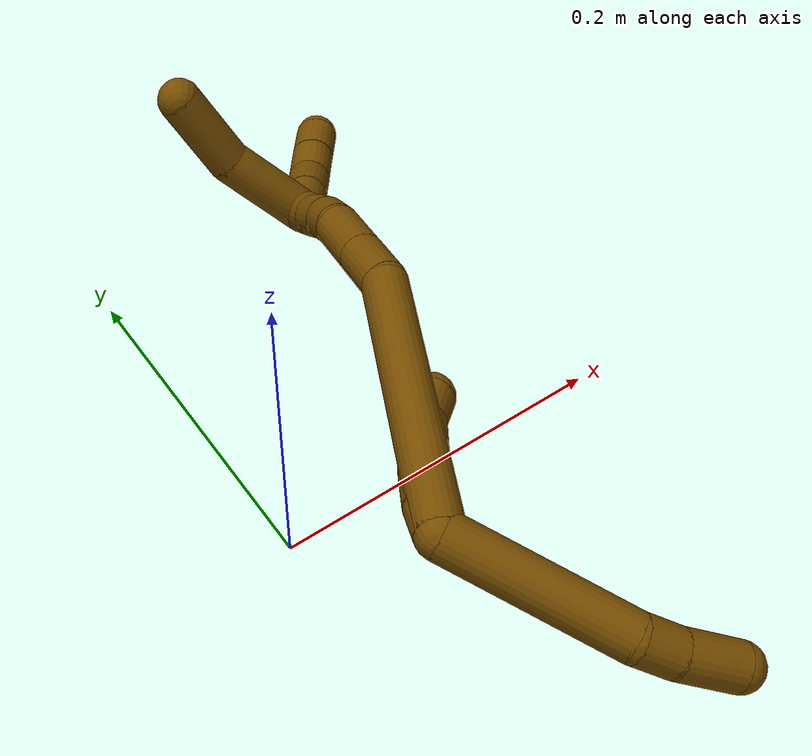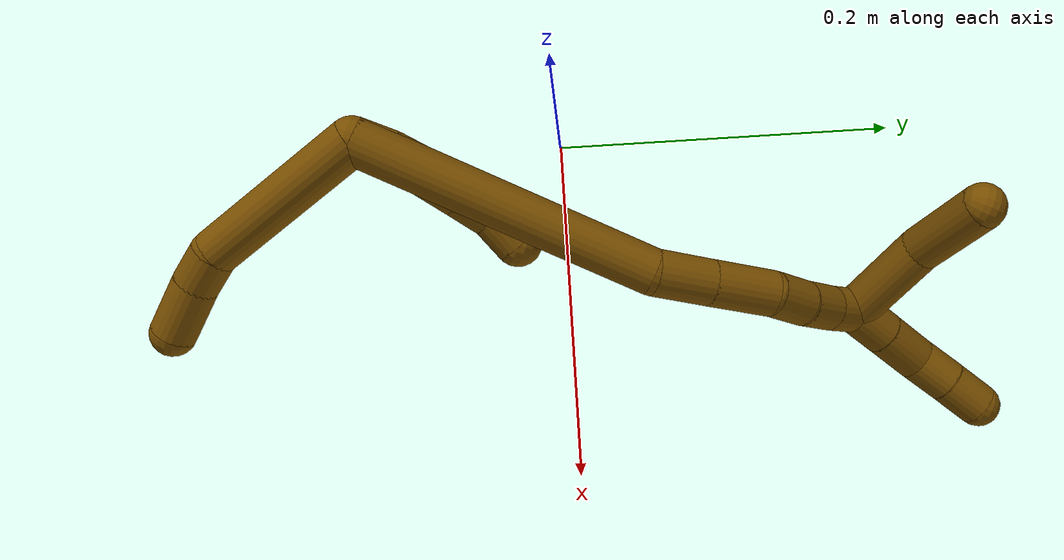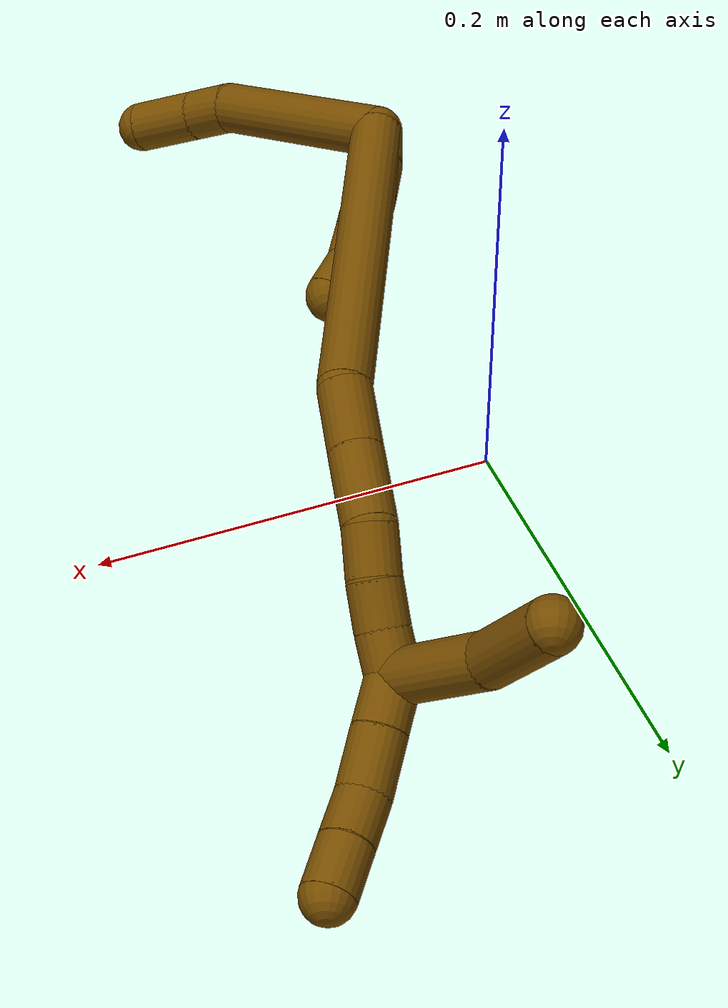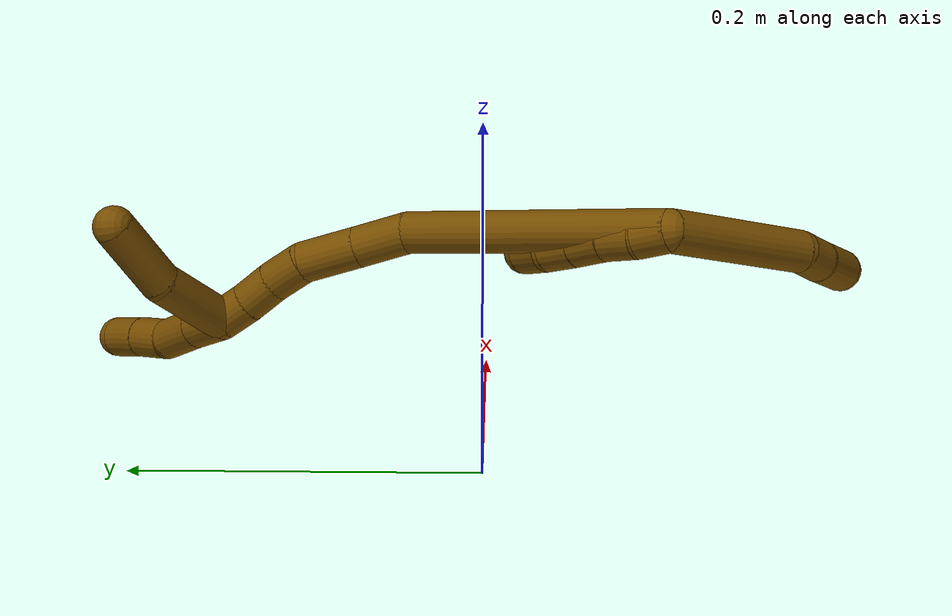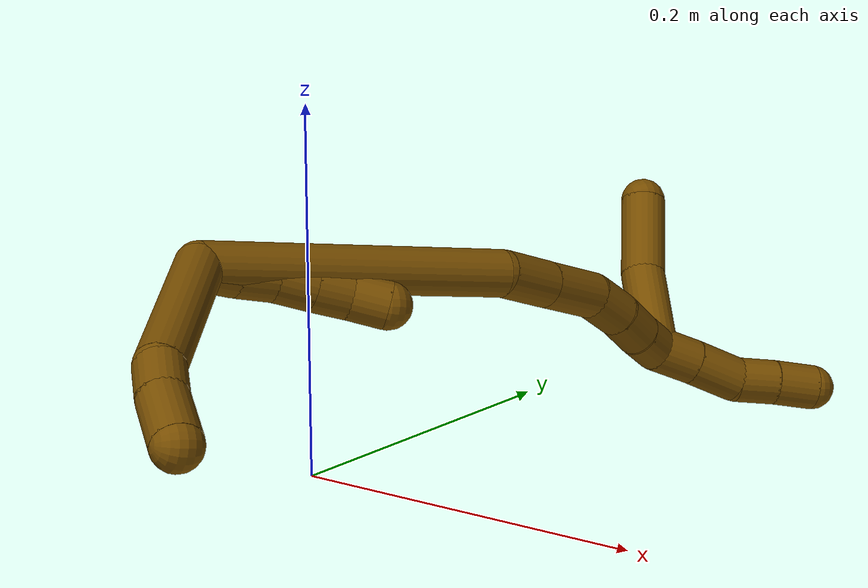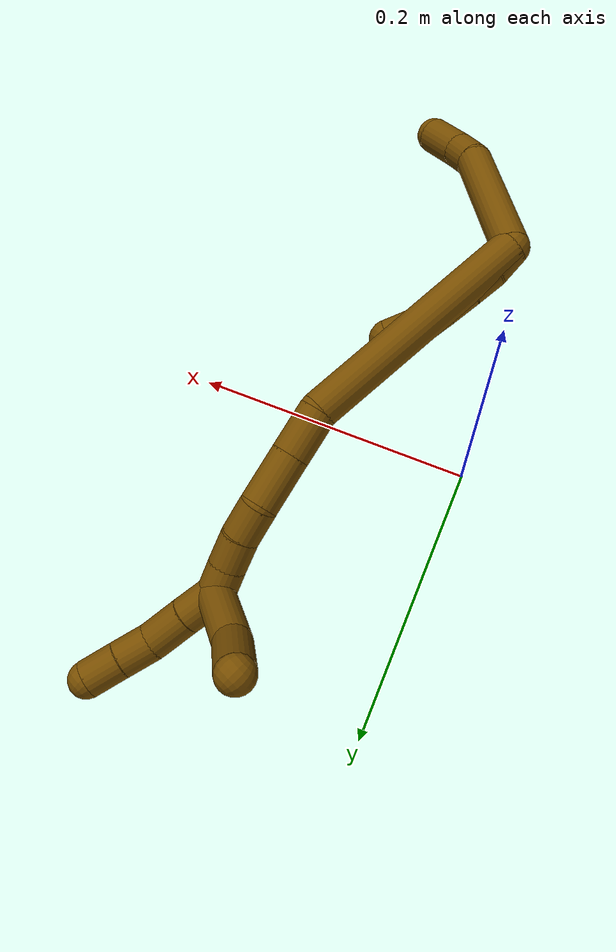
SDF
<sdf version="1.7">
 <world name="default">
  <model name="photoneo_s_sensor">
   <static>1</static>
   <pose>0 0 2 1.57079 1.57079 3.14159</pose>
   <link name="link">
    <inertial><mass>0.1</mass></inertial>
    <sensor name="sensor" type="depth">
     <update_rate>30</update_rate>
     <camera>
      <horizontal_fov>1.22</horizontal_fov>
      <image><width>1920</width><height>1200</height><format>B8G8R8</format></image>
      <clip><near>0.1</near><far>4</far></clip>
      <depth_camera><output>points</output></depth_camera>
     </camera>
     <plugin name="camera_plugin" filename="libgazebo_ros_depth_camera.so">
      <baseline>0.2</baseline>
      <alwaysOn>1</alwaysOn>
      <updateRate>0.0</updateRate>
      <cameraName>camera_ir</cameraName>
      <imageTopicName>/camera/color/image_raw</imageTopicName>
      <cameraInfoTopicName>/camera/color/camera_info</cameraInfoTopicName>
      <depthImageTopicName>/camera/depth/image_raw</depthImageTopicName>
      <depthImageCameraInfoTopicName>/camera/depth/camera_info</depthImageCameraInfoTopicName>
      <pointCloudTopicName>/camera/depth/points</pointCloudTopicName>
      <frameName>fr_optical</frameName>
      <pointCloudCutoff>0.1</pointCloudCutoff>
      <pointCloudCutoffMax>2.0</pointCloudCutoffMax>
      <distortionK1>0</distortionK1>
      <distortionK2>0</distortionK2>
      <distortionK3>0</distortionK3>
      <distortionT1>0</distortionT1>
      <distortionT2>0</distortionT2>
      <CxPrime>0</CxPrime>
      <Cx>0</Cx>
      <Cy>0</Cy>
      <focalLength>0</focalLength>
      <hackBaseline>0</hackBaseline>
     </plugin>
    </sensor>
   </link>
  </model>
  <model name="bin">
   <static>1</static>
   <link name="bottom">
    <collision name="collision-bottom">
     <pose>0 0 -0.01 0 -0 0</pose>
     <geometry><box><size>0.8 0.6 0.02</size></box></geometry>
     <surface>
      <friction><ode><mu>100</mu><mu2>100</mu2></ode></friction>
      <contact><collide_bitmask>65535</collide_bitmask></contact>
     </surface>
    </collision>
   </link>
   <link name="west_wall">
    <collision name="collision-west_wall">
     <pose>-0.41 0 0.1 0 -0 0</pose>
     <geometry><box><size>0.02 0.6 0.2</size></box></geometry>
     <surface>
      <friction><ode><mu>100</mu><mu2>100</mu2></ode></friction>
      <contact><collide_bitmask>65535</collide_bitmask></contact>
     </surface>
    </collision>
   </link>
   <link name="east_wall">
    <collision name="collision-east_wall">
     <pose>0.41 0 0.1 0 -0 0</pose>
     <geometry><box><size>0.02 0.6 0.2</size></box></geometry>
     <surface>
      <friction><ode><mu>100</mu><mu2>100</mu2></ode></friction>
      <contact><collide_bitmask>65535</collide_bitmask></contact>
     </surface>
    </collision>
   </link>
   <link name="south_wall">
    <collision name="collision-south_wall">
     <pose>0 -0.31 0.1 0 -0 0</pose>
     <geometry><box><size>0.8 0.02 0.2</size></box></geometry>
     <surface>
      <friction><ode><mu>100</mu><mu2>100</mu2></ode></friction>
      <contact><collide_bitmask>65535</collide_bitmask></contact>
     </surface>
    </collision>
   </link>
   <link name="north_wall">
    <collision name="collision-north_wall">
     <pose>0 0.31 0.1 0 -0 0</pose>
     <geometry><box><size>0.8 0.02 0.2</size></box></geometry>
     <surface>
      <friction><ode><mu>100</mu><mu2>100</mu2></ode></friction>
      <contact><collide_bitmask>65535</collide_bitmask></contact>
     </surface>
    </collision>
   </link>
  </model>
  <model name="12">
   <static>0</static>
   <link name="12">
    <collision name="collision-cylinder-e_1_2_8">
     <pose>-0.021958 -0.035435 0.02406 0.974311 -0.47373 -0.254374</pose>
     <geometry><cylinder><radius>0.0125</radius><length>0.096265</length></cylinder></geometry>
     <surface>
      <friction><ode><mu>1.16</mu><mu2>1.16</mu2><slip1>0</slip1><slip2>0</slip2></ode></friction>
      <contact><ode><kp>1e+06</kp><kd>1</kd><max_vel>0</max_vel><min_depth>0.001</min_depth></ode></contact>
     </surface>
    </collision>
    <visual name="visual-cylinder-e_1_2_8">
     <pose>-0.021958 -0.035435 0.02406 0.974311 -0.47373 -0.254374</pose>
     <geometry><cylinder><radius>0.0125</radius><length>0.096265</length></cylinder></geometry>
     <material><ambient>0.466667 0.301961 0 1</ambient></material>
    </visual>
    <collision name="collision-cylinder-e_2_8_9">
     <pose>-0.050367 -0.079162 0.050416 1.30067 -0.643312 -0.496536</pose>
     <geometry><cylinder><radius>0.0125</radius><length>0.021505</length></cylinder></geometry>
     <surface>
      <friction><ode><mu>1.16</mu><mu2>1.16</mu2><slip1>0</slip1><slip2>0</slip2></ode></friction>
      <contact><ode><kp>1e+06</kp><kd>1</kd><max_vel>0</max_vel><min_depth>0.001</min_depth></ode></contact>
     </surface>
    </collision>
    <visual name="visual-cylinder-e_2_8_9">
     <pose>-0.050367 -0.079162 0.050416 1.30067 -0.643312 -0.496536</pose>
     <geometry><cylinder><radius>0.0125</radius><length>0.021505</length></cylinder></geometry>
     <material><ambient>0.466667 0.301961 0 1</ambient></material>
    </visual>
    <collision name="collision-cylinder-e_3_9_6">
     <pose>-0.065525 -0.100873 0.054653 1.42718 -0.570932 -0.497656</pose>
     <geometry><cylinder><radius>0.0125</radius><length>0.03223</length></cylinder></geometry>
     <surface>
      <friction><ode><mu>1.16</mu><mu2>1.16</mu2><slip1>0</slip1><slip2>0</slip2></ode></friction>
      <contact><ode><kp>1e+06</kp><kd>1</kd><max_vel>0</max_vel><min_depth>0.001</min_depth></ode></contact>
     </surface>
    </collision>
    <visual name="visual-cylinder-e_3_9_6">
     <pose>-0.065525 -0.100873 0.054653 1.42718 -0.570932 -0.497656</pose>
     <geometry><cylinder><radius>0.0125</radius><length>0.03223</length></cylinder></geometry>
     <material><ambient>0.466667 0.301961 0 1</ambient></material>
    </visual>
    <collision name="collision-cylinder-e_1_2_10">
     <pose>-0.001264 0.000537 -0.009905 -3.08741 -0.126732 2.33431</pose>
     <geometry><cylinder><radius>0.0125</radius><length>0.02</length></cylinder></geometry>
     <surface>
      <friction><ode><mu>1.16</mu><mu2>1.16</mu2><slip1>0</slip1><slip2>0</slip2></ode></friction>
      <contact><ode><kp>1e+06</kp><kd>1</kd><max_vel>0</max_vel><min_depth>0.001</min_depth></ode></contact>
     </surface>
    </collision>
    <visual name="visual-cylinder-e_1_2_10">
     <pose>-0.001264 0.000537 -0.009905 -3.08741 -0.126732 2.33431</pose>
     <geometry><cylinder><radius>0.0125</radius><length>0.02</length></cylinder></geometry>
     <material><ambient>0.466667 0.301961 0 1</ambient></material>
    </visual>
    <collision name="collision-cylinder-e_2_10_11">
     <pose>-0.003097 5.8e-05 -0.029742 3.03959 -0.056926 -1.01753</pose>
     <geometry><cylinder><radius>0.0125</radius><length>0.02</length></cylinder></geometry>
     <surface>
      <friction><ode><mu>1.16</mu><mu2>1.16</mu2><slip1>0</slip1><slip2>0</slip2></ode></friction>
      <contact><ode><kp>1e+06</kp><kd>1</kd><max_vel>0</max_vel><min_depth>0.001</min_depth></ode></contact>
     </surface>
    </collision>
    <visual name="visual-cylinder-e_2_10_11">
     <pose>-0.003097 5.8e-05 -0.029742 3.03959 -0.056926 -1.01753</pose>
     <geometry><cylinder><radius>0.0125</radius><length>0.02</length></cylinder></geometry>
     <material><ambient>0.466667 0.301961 0 1</ambient></material>
    </visual>
    <collision name="collision-cylinder-e_3_11_12">
     <pose>-0.005506 -0.002355 -0.049404 2.99906 -0.185064 -1.83014</pose>
     <geometry><cylinder><radius>0.0125</radius><length>0.02</length></cylinder></geometry>
     <surface>
      <friction><ode><mu>1.16</mu><mu2>1.16</mu2><slip1>0</slip1><slip2>0</slip2></ode></friction>
      <contact><ode><kp>1e+06</kp><kd>1</kd><max_vel>0</max_vel><min_depth>0.001</min_depth></ode></contact>
     </surface>
    </collision>
    <visual name="visual-cylinder-e_3_11_12">
     <pose>-0.005506 -0.002355 -0.049404 2.99906 -0.185064 -1.83014</pose>
     <geometry><cylinder><radius>0.0125</radius><length>0.02</length></cylinder></geometry>
     <material><ambient>0.466667 0.301961 0 1</ambient></material>
    </visual>
    <collision name="collision-cylinder-e_4_12_13">
     <pose>-0.008951 -0.005298 -0.068882 2.98424 -0.161191 -1.59498</pose>
     <geometry><cylinder><radius>0.0125</radius><length>0.02</length></cylinder></geometry>
     <surface>
      <friction><ode><mu>1.16</mu><mu2>1.16</mu2><slip1>0</slip1><slip2>0</slip2></ode></friction>
      <contact><ode><kp>1e+06</kp><kd>1</kd><max_vel>0</max_vel><min_depth>0.001</min_depth></ode></contact>
     </surface>
    </collision>
    <visual name="visual-cylinder-e_4_12_13">
     <pose>-0.008951 -0.005298 -0.068882 2.98424 -0.161191 -1.59498</pose>
     <geometry><cylinder><radius>0.0125</radius><length>0.02</length></cylinder></geometry>
     <material><ambient>0.466667 0.301961 0 1</ambient></material>
    </visual>
    <collision name="collision-cylinder-e_5_13_5">
     <pose>-0.012452 -0.010953 -0.087548 2.70988 -0.190808 -0.823</pose>
     <geometry><cylinder><radius>0.0125</radius><length>0.02</length></cylinder></geometry>
     <surface>
      <friction><ode><mu>1.16</mu><mu2>1.16</mu2><slip1>0</slip1><slip2>0</slip2></ode></friction>
      <contact><ode><kp>1e+06</kp><kd>1</kd><max_vel>0</max_vel><min_depth>0.001</min_depth></ode></contact>
     </surface>
    </collision>
    <visual name="visual-cylinder-e_5_13_5">
     <pose>-0.012452 -0.010953 -0.087548 2.70988 -0.190808 -0.823</pose>
     <geometry><cylinder><radius>0.0125</radius><length>0.02</length></cylinder></geometry>
     <material><ambient>0.466667 0.301961 0 1</ambient></material>
    </visual>
    <collision name="collision-cylinder-e_1_2_14">
     <pose>0.0023 -0.00434 -0.082827 3.08925 0.027729 0.974153</pose>
     <geometry><cylinder><radius>0.0125</radius><length>0.165945</length></cylinder></geometry>
     <surface>
      <friction><ode><mu>1.16</mu><mu2>1.16</mu2><slip1>0</slip1><slip2>0</slip2></ode></friction>
      <contact><ode><kp>1e+06</kp><kd>1</kd><max_vel>0</max_vel><min_depth>0.001</min_depth></ode></contact>
     </surface>
    </collision>
    <visual name="visual-cylinder-e_1_2_14">
     <pose>0.0023 -0.00434 -0.082827 3.08925 0.027729 0.974153</pose>
     <geometry><cylinder><radius>0.0125</radius><length>0.165945</length></cylinder></geometry>
     <material><ambient>0.466667 0.301961 0 1</ambient></material>
    </visual>
    <collision name="collision-cylinder-e_2_14_15">
     <pose>0.002315 -0.005139 -0.181265 -2.91859 -0.141824 1.13065</pose>
     <geometry><cylinder><radius>0.0125</radius><length>0.032341</length></cylinder></geometry>
     <surface>
      <friction><ode><mu>1.16</mu><mu2>1.16</mu2><slip1>0</slip1><slip2>0</slip2></ode></friction>
      <contact><ode><kp>1e+06</kp><kd>1</kd><max_vel>0</max_vel><min_depth>0.001</min_depth></ode></contact>
     </surface>
    </collision>
    <visual name="visual-cylinder-e_2_14_15">
     <pose>0.002315 -0.005139 -0.181265 -2.91859 -0.141824 1.13065</pose>
     <geometry><cylinder><radius>0.0125</radius><length>0.032341</length></cylinder></geometry>
     <material><ambient>0.466667 0.301961 0 1</ambient></material>
    </visual>
    <collision name="collision-cylinder-e_3_15_16">
     <pose>-0.002405 0.002477 -0.214419 -2.9133 -0.134388 1.06162</pose>
     <geometry><cylinder><radius>0.0125</radius><length>0.036346</length></cylinder></geometry>
     <surface>
      <friction><ode><mu>1.16</mu><mu2>1.16</mu2><slip1>0</slip1><slip2>0</slip2></ode></friction>
      <contact><ode><kp>1e+06</kp><kd>1</kd><max_vel>0</max_vel><min_depth>0.001</min_depth></ode></contact>
     </surface>
    </collision>
    <visual name="visual-cylinder-e_3_15_16">
     <pose>-0.002405 0.002477 -0.214419 -2.9133 -0.134388 1.06162</pose>
     <geometry><cylinder><radius>0.0125</radius><length>0.036346</length></cylinder></geometry>
     <material><ambient>0.466667 0.301961 0 1</ambient></material>
    </visual>
    <collision name="collision-cylinder-e_4_16_17">
     <pose>-0.009695 0.008706 -0.242522 -2.94044 -0.423207 2.26323</pose>
     <geometry><cylinder><radius>0.0125</radius><length>0.023644</length></cylinder></geometry>
     <surface>
      <friction><ode><mu>1.16</mu><mu2>1.16</mu2><slip1>0</slip1><slip2>0</slip2></ode></friction>
      <contact><ode><kp>1e+06</kp><kd>1</kd><max_vel>0</max_vel><min_depth>0.001</min_depth></ode></contact>
     </surface>
    </collision>
    <visual name="visual-cylinder-e_4_16_17">
     <pose>-0.009695 0.008706 -0.242522 -2.94044 -0.423207 2.26323</pose>
     <geometry><cylinder><radius>0.0125</radius><length>0.023644</length></cylinder></geometry>
     <material><ambient>0.466667 0.301961 0 1</ambient></material>
    </visual>
    <collision name="collision-cylinder-e_5_17_18">
     <pose>-0.019736 0.013816 -0.262136 -2.82594 -0.49867 2.02438</pose>
     <geometry><cylinder><radius>0.0125</radius><length>0.021687</length></cylinder></geometry>
     <surface>
      <friction><ode><mu>1.16</mu><mu2>1.16</mu2><slip1>0</slip1><slip2>0</slip2></ode></friction>
      <contact><ode><kp>1e+06</kp><kd>1</kd><max_vel>0</max_vel><min_depth>0.001</min_depth></ode></contact>
     </surface>
    </collision>
    <visual name="visual-cylinder-e_5_17_18">
     <pose>-0.019736 0.013816 -0.262136 -2.82594 -0.49867 2.02438</pose>
     <geometry><cylinder><radius>0.0125</radius><length>0.021687</length></cylinder></geometry>
     <material><ambient>0.466667 0.301961 0 1</ambient></material>
    </visual>
    <collision name="collision-cylinder-e_6_18_1">
     <pose>-0.028952 0.020005 -0.279773 -2.78144 -0.413919 1.71299</pose>
     <geometry><cylinder><radius>0.0125</radius><length>0.020038</length></cylinder></geometry>
     <surface>
      <friction><ode><mu>1.16</mu><mu2>1.16</mu2><slip1>0</slip1><slip2>0</slip2></ode></friction>
      <contact><ode><kp>1e+06</kp><kd>1</kd><max_vel>0</max_vel><min_depth>0.001</min_depth></ode></contact>
     </surface>
    </collision>
    <visual name="visual-cylinder-e_6_18_1">
     <pose>-0.028952 0.020005 -0.279773 -2.78144 -0.413919 1.71299</pose>
     <geometry><cylinder><radius>0.0125</radius><length>0.020038</length></cylinder></geometry>
     <material><ambient>0.466667 0.301961 0 1</ambient></material>
    </visual>
    <collision name="collision-cylinder-e_1_1_19">
     <pose>-0.013239 0.039969 -0.29421 -1.90731 0.839199 -1.12244</pose>
     <geometry><cylinder><radius>0.0125</radius><length>0.053064</length></cylinder></geometry>
     <surface>
      <friction><ode><mu>1.16</mu><mu2>1.16</mu2><slip1>0</slip1><slip2>0</slip2></ode></friction>
      <contact><ode><kp>1e+06</kp><kd>1</kd><max_vel>0</max_vel><min_depth>0.001</min_depth></ode></contact>
     </surface>
    </collision>
    <visual name="visual-cylinder-e_1_1_19">
     <pose>-0.013239 0.039969 -0.29421 -1.90731 0.839199 -1.12244</pose>
     <geometry><cylinder><radius>0.0125</radius><length>0.053064</length></cylinder></geometry>
     <material><ambient>0.466667 0.301961 0 1</ambient></material>
    </visual>
    <collision name="collision-cylinder-e_2_19_4">
     <pose>0.027892 0.065352 -0.304352 -2.03096 1.14667 -1.61065</pose>
     <geometry><cylinder><radius>0.0125</radius><length>0.046936</length></cylinder></geometry>
     <surface>
      <friction><ode><mu>1.16</mu><mu2>1.16</mu2><slip1>0</slip1><slip2>0</slip2></ode></friction>
      <contact><ode><kp>1e+06</kp><kd>1</kd><max_vel>0</max_vel><min_depth>0.001</min_depth></ode></contact>
     </surface>
    </collision>
    <visual name="visual-cylinder-e_2_19_4">
     <pose>0.027892 0.065352 -0.304352 -2.03096 1.14667 -1.61065</pose>
     <geometry><cylinder><radius>0.0125</radius><length>0.046936</length></cylinder></geometry>
     <material><ambient>0.466667 0.301961 0 1</ambient></material>
    </visual>
    <collision name="collision-cylinder-e_1_1_20">
     <pose>-0.036222 0.02116 -0.299756 2.96129 -0.272715 -1.9765</pose>
     <geometry><cylinder><radius>0.0125</radius><length>0.024063</length></cylinder></geometry>
     <surface>
      <friction><ode><mu>1.16</mu><mu2>1.16</mu2><slip1>0</slip1><slip2>0</slip2></ode></friction>
      <contact><ode><kp>1e+06</kp><kd>1</kd><max_vel>0</max_vel><min_depth>0.001</min_depth></ode></contact>
     </surface>
    </collision>
    <visual name="visual-cylinder-e_1_1_20">
     <pose>-0.036222 0.02116 -0.299756 2.96129 -0.272715 -1.9765</pose>
     <geometry><cylinder><radius>0.0125</radius><length>0.024063</length></cylinder></geometry>
     <material><ambient>0.466667 0.301961 0 1</ambient></material>
    </visual>
    <collision name="collision-cylinder-e_2_20_21">
     <pose>-0.043902 0.016791 -0.324664 2.97354 -0.31333 -2.16186</pose>
     <geometry><cylinder><radius>0.0125</radius><length>0.028805</length></cylinder></geometry>
     <surface>
      <friction><ode><mu>1.16</mu><mu2>1.16</mu2><slip1>0</slip1><slip2>0</slip2></ode></friction>
      <contact><ode><kp>1e+06</kp><kd>1</kd><max_vel>0</max_vel><min_depth>0.001</min_depth></ode></contact>
     </surface>
    </collision>
    <visual name="visual-cylinder-e_2_20_21">
     <pose>-0.043902 0.016791 -0.324664 2.97354 -0.31333 -2.16186</pose>
     <geometry><cylinder><radius>0.0125</radius><length>0.028805</length></cylinder></geometry>
     <material><ambient>0.466667 0.301961 0 1</ambient></material>
    </visual>
    <collision name="collision-cylinder-e_3_21_22">
     <pose>-0.048577 0.011559 -0.34937 2.88487 -0.020371 -0.157505</pose>
     <geometry><cylinder><radius>0.0125</radius><length>0.02316</length></cylinder></geometry>
     <surface>
      <friction><ode><mu>1.16</mu><mu2>1.16</mu2><slip1>0</slip1><slip2>0</slip2></ode></friction>
      <contact><ode><kp>1e+06</kp><kd>1</kd><max_vel>0</max_vel><min_depth>0.001</min_depth></ode></contact>
     </surface>
    </collision>
    <visual name="visual-cylinder-e_3_21_22">
     <pose>-0.048577 0.011559 -0.34937 2.88487 -0.020371 -0.157505</pose>
     <geometry><cylinder><radius>0.0125</radius><length>0.02316</length></cylinder></geometry>
     <material><ambient>0.466667 0.301961 0 1</ambient></material>
    </visual>
    <collision name="collision-cylinder-e_4_22_3">
     <pose>-0.049723 0.005633 -0.372141 2.88904 -0.076016 -0.582054</pose>
     <geometry><cylinder><radius>0.0125</radius><length>0.023972</length></cylinder></geometry>
     <surface>
      <friction><ode><mu>1.16</mu><mu2>1.16</mu2><slip1>0</slip1><slip2>0</slip2></ode></friction>
      <contact><ode><kp>1e+06</kp><kd>1</kd><max_vel>0</max_vel><min_depth>0.001</min_depth></ode></contact>
     </surface>
    </collision>
    <visual name="visual-cylinder-e_4_22_3">
     <pose>-0.049723 0.005633 -0.372141 2.88904 -0.076016 -0.582054</pose>
     <geometry><cylinder><radius>0.0125</radius><length>0.023972</length></cylinder></geometry>
     <material><ambient>0.466667 0.301961 0 1</ambient></material>
    </visual>
    <collision name="collision-sphere-3">
     <pose>-0.050634 0.002647 -0.383713 0 -0 0</pose>
     <geometry><sphere><radius>0.0125</radius></sphere></geometry>
     <surface>
      <friction><ode><mu>1.16</mu><mu2>1.16</mu2><slip1>0</slip1><slip2>0</slip2></ode></friction>
      <contact><ode><kp>1e+06</kp><kd>1</kd><max_vel>0</max_vel><min_depth>0.001</min_depth></ode></contact>
     </surface>
    </collision>
    <visual name="visual-sphere-3">
     <pose>-0.050634 0.002647 -0.383713 0 -0 0</pose>
     <geometry><sphere><radius>0.0125</radius></sphere></geometry>
     <material><ambient>0.466667 0.301961 0 1</ambient></material>
    </visual>
    <collision name="collision-sphere-22">
     <pose>-0.048813 0.008619 -0.360568 0 -0 0</pose>
     <geometry><sphere><radius>0.0125</radius></sphere></geometry>
     <surface>
      <friction><ode><mu>1.16</mu><mu2>1.16</mu2><slip1>0</slip1><slip2>0</slip2></ode></friction>
      <contact><ode><kp>1e+06</kp><kd>1</kd><max_vel>0</max_vel><min_depth>0.001</min_depth></ode></contact>
     </surface>
    </collision>
    <visual name="visual-sphere-22">
     <pose>-0.048813 0.008619 -0.360568 0 -0 0</pose>
     <geometry><sphere><radius>0.0125</radius></sphere></geometry>
     <material><ambient>0.466667 0.301961 0 1</ambient></material>
    </visual>
    <collision name="collision-sphere-21">
     <pose>-0.048341 0.014499 -0.338172 0 -0 0</pose>
     <geometry><sphere><radius>0.0125</radius></sphere></geometry>
     <surface>
      <friction><ode><mu>1.16</mu><mu2>1.16</mu2><slip1>0</slip1><slip2>0</slip2></ode></friction>
      <contact><ode><kp>1e+06</kp><kd>1</kd><max_vel>0</max_vel><min_depth>0.001</min_depth></ode></contact>
     </surface>
    </collision>
    <visual name="visual-sphere-21">
     <pose>-0.048341 0.014499 -0.338172 0 -0 0</pose>
     <geometry><sphere><radius>0.0125</radius></sphere></geometry>
     <material><ambient>0.466667 0.301961 0 1</ambient></material>
    </visual>
    <collision name="collision-sphere-20">
     <pose>-0.039463 0.019082 -0.311155 0 -0 0</pose>
     <geometry><sphere><radius>0.0125</radius></sphere></geometry>
     <surface>
      <friction><ode><mu>1.16</mu><mu2>1.16</mu2><slip1>0</slip1><slip2>0</slip2></ode></friction>
      <contact><ode><kp>1e+06</kp><kd>1</kd><max_vel>0</max_vel><min_depth>0.001</min_depth></ode></contact>
     </surface>
    </collision>
    <visual name="visual-sphere-20">
     <pose>-0.039463 0.019082 -0.311155 0 -0 0</pose>
     <geometry><sphere><radius>0.0125</radius></sphere></geometry>
     <material><ambient>0.466667 0.301961 0 1</ambient></material>
    </visual>
    <collision name="collision-sphere-4">
     <pose>0.049281 0.074006 -0.308641 0 -0 0</pose>
     <geometry><sphere><radius>0.0125</radius></sphere></geometry>
     <surface>
      <friction><ode><mu>1.16</mu><mu2>1.16</mu2><slip1>0</slip1><slip2>0</slip2></ode></friction>
      <contact><ode><kp>1e+06</kp><kd>1</kd><max_vel>0</max_vel><min_depth>0.001</min_depth></ode></contact>
     </surface>
    </collision>
    <visual name="visual-sphere-4">
     <pose>0.049281 0.074006 -0.308641 0 -0 0</pose>
     <geometry><sphere><radius>0.0125</radius></sphere></geometry>
     <material><ambient>0.466667 0.301961 0 1</ambient></material>
    </visual>
    <collision name="collision-sphere-11">
     <pose>-0.003666 -0.000959 -0.039674 0 -0 0</pose>
     <geometry><sphere><radius>0.0125</radius></sphere></geometry>
     <surface>
      <friction><ode><mu>1.16</mu><mu2>1.16</mu2><slip1>0</slip1><slip2>0</slip2></ode></friction>
      <contact><ode><kp>1e+06</kp><kd>1</kd><max_vel>0</max_vel><min_depth>0.001</min_depth></ode></contact>
     </surface>
    </collision>
    <visual name="visual-sphere-11">
     <pose>-0.003666 -0.000959 -0.039674 0 -0 0</pose>
     <geometry><sphere><radius>0.0125</radius></sphere></geometry>
     <material><ambient>0.466667 0.301961 0 1</ambient></material>
    </visual>
    <collision name="collision-sphere-10">
     <pose>-0.002528 0.001074 -0.01981 0 -0 0</pose>
     <geometry><sphere><radius>0.0125</radius></sphere></geometry>
     <surface>
      <friction><ode><mu>1.16</mu><mu2>1.16</mu2><slip1>0</slip1><slip2>0</slip2></ode></friction>
      <contact><ode><kp>1e+06</kp><kd>1</kd><max_vel>0</max_vel><min_depth>0.001</min_depth></ode></contact>
     </surface>
    </collision>
    <visual name="visual-sphere-10">
     <pose>-0.002528 0.001074 -0.01981 0 -0 0</pose>
     <geometry><sphere><radius>0.0125</radius></sphere></geometry>
     <material><ambient>0.466667 0.301961 0 1</ambient></material>
    </visual>
    <collision name="collision-sphere-6">
     <pose>-0.074234 -0.114292 0.056593 0 -0 0</pose>
     <geometry><sphere><radius>0.0125</radius></sphere></geometry>
     <surface>
      <friction><ode><mu>1.16</mu><mu2>1.16</mu2><slip1>0</slip1><slip2>0</slip2></ode></friction>
      <contact><ode><kp>1e+06</kp><kd>1</kd><max_vel>0</max_vel><min_depth>0.001</min_depth></ode></contact>
     </surface>
    </collision>
    <visual name="visual-sphere-6">
     <pose>-0.074234 -0.114292 0.056593 0 -0 0</pose>
     <geometry><sphere><radius>0.0125</radius></sphere></geometry>
     <material><ambient>0.466667 0.301961 0 1</ambient></material>
    </visual>
    <collision name="collision-sphere-9">
     <pose>-0.056816 -0.087453 0.052712 0 -0 0</pose>
     <geometry><sphere><radius>0.0125</radius></sphere></geometry>
     <surface>
      <friction><ode><mu>1.16</mu><mu2>1.16</mu2><slip1>0</slip1><slip2>0</slip2></ode></friction>
      <contact><ode><kp>1e+06</kp><kd>1</kd><max_vel>0</max_vel><min_depth>0.001</min_depth></ode></contact>
     </surface>
    </collision>
    <visual name="visual-sphere-9">
     <pose>-0.056816 -0.087453 0.052712 0 -0 0</pose>
     <geometry><sphere><radius>0.0125</radius></sphere></geometry>
     <material><ambient>0.466667 0.301961 0 1</ambient></material>
    </visual>
    <collision name="collision-sphere-2">
     <geometry><sphere><radius>0.0125</radius></sphere></geometry>
     <surface>
      <friction><ode><mu>1.16</mu><mu2>1.16</mu2><slip1>0</slip1><slip2>0</slip2></ode></friction>
      <contact><ode><kp>1e+06</kp><kd>1</kd><max_vel>0</max_vel><min_depth>0.001</min_depth></ode></contact>
     </surface>
    </collision>
    <visual name="visual-sphere-2">
     <geometry><sphere><radius>0.0125</radius></sphere></geometry>
     <material><ambient>0.466667 0.301961 0 1</ambient></material>
    </visual>
    <collision name="collision-sphere-19">
     <pose>0.006504 0.056699 -0.300063 0 -0 0</pose>
     <geometry><sphere><radius>0.0125</radius></sphere></geometry>
     <surface>
      <friction><ode><mu>1.16</mu><mu2>1.16</mu2><slip1>0</slip1><slip2>0</slip2></ode></friction>
      <contact><ode><kp>1e+06</kp><kd>1</kd><max_vel>0</max_vel><min_depth>0.001</min_depth></ode></contact>
     </surface>
    </collision>
    <visual name="visual-sphere-19">
     <pose>0.006504 0.056699 -0.300063 0 -0 0</pose>
     <geometry><sphere><radius>0.0125</radius></sphere></geometry>
     <material><ambient>0.466667 0.301961 0 1</ambient></material>
    </visual>
    <collision name="collision-sphere-8">
     <pose>-0.043917 -0.070871 0.048121 0 -0 0</pose>
     <geometry><sphere><radius>0.0125</radius></sphere></geometry>
     <surface>
      <friction><ode><mu>1.16</mu><mu2>1.16</mu2><slip1>0</slip1><slip2>0</slip2></ode></friction>
      <contact><ode><kp>1e+06</kp><kd>1</kd><max_vel>0</max_vel><min_depth>0.001</min_depth></ode></contact>
     </surface>
    </collision>
    <visual name="visual-sphere-8">
     <pose>-0.043917 -0.070871 0.048121 0 -0 0</pose>
     <geometry><sphere><radius>0.0125</radius></sphere></geometry>
     <material><ambient>0.466667 0.301961 0 1</ambient></material>
    </visual>
    <collision name="collision-sphere-12">
     <pose>-0.007346 -0.003751 -0.059133 0 -0 0</pose>
     <geometry><sphere><radius>0.0125</radius></sphere></geometry>
     <surface>
      <friction><ode><mu>1.16</mu><mu2>1.16</mu2><slip1>0</slip1><slip2>0</slip2></ode></friction>
      <contact><ode><kp>1e+06</kp><kd>1</kd><max_vel>0</max_vel><min_depth>0.001</min_depth></ode></contact>
     </surface>
    </collision>
    <visual name="visual-sphere-12">
     <pose>-0.007346 -0.003751 -0.059133 0 -0 0</pose>
     <geometry><sphere><radius>0.0125</radius></sphere></geometry>
     <material><ambient>0.466667 0.301961 0 1</ambient></material>
    </visual>
    <collision name="collision-sphere-13">
     <pose>-0.010556 -0.006845 -0.07863 0 -0 0</pose>
     <geometry><sphere><radius>0.0125</radius></sphere></geometry>
     <surface>
      <friction><ode><mu>1.16</mu><mu2>1.16</mu2><slip1>0</slip1><slip2>0</slip2></ode></friction>
      <contact><ode><kp>1e+06</kp><kd>1</kd><max_vel>0</max_vel><min_depth>0.001</min_depth></ode></contact>
     </surface>
    </collision>
    <visual name="visual-sphere-13">
     <pose>-0.010556 -0.006845 -0.07863 0 -0 0</pose>
     <geometry><sphere><radius>0.0125</radius></sphere></geometry>
     <material><ambient>0.466667 0.301961 0 1</ambient></material>
    </visual>
    <collision name="collision-sphere-5">
     <pose>-0.014349 -0.015061 -0.096466 0 -0 0</pose>
     <geometry><sphere><radius>0.0125</radius></sphere></geometry>
     <surface>
      <friction><ode><mu>1.16</mu><mu2>1.16</mu2><slip1>0</slip1><slip2>0</slip2></ode></friction>
      <contact><ode><kp>1e+06</kp><kd>1</kd><max_vel>0</max_vel><min_depth>0.001</min_depth></ode></contact>
     </surface>
    </collision>
    <visual name="visual-sphere-5">
     <pose>-0.014349 -0.015061 -0.096466 0 -0 0</pose>
     <geometry><sphere><radius>0.0125</radius></sphere></geometry>
     <material><ambient>0.466667 0.301961 0 1</ambient></material>
    </visual>
    <collision name="collision-sphere-14">
     <pose>0.004601 -0.008679 -0.165654 0 -0 0</pose>
     <geometry><sphere><radius>0.0125</radius></sphere></geometry>
     <surface>
      <friction><ode><mu>1.16</mu><mu2>1.16</mu2><slip1>0</slip1><slip2>0</slip2></ode></friction>
      <contact><ode><kp>1e+06</kp><kd>1</kd><max_vel>0</max_vel><min_depth>0.001</min_depth></ode></contact>
     </surface>
    </collision>
    <visual name="visual-sphere-14">
     <pose>0.004601 -0.008679 -0.165654 0 -0 0</pose>
     <geometry><sphere><radius>0.0125</radius></sphere></geometry>
     <material><ambient>0.466667 0.301961 0 1</ambient></material>
    </visual>
    <collision name="collision-sphere-15">
     <pose>3e-05 -0.001599 -0.196877 0 -0 0</pose>
     <geometry><sphere><radius>0.0125</radius></sphere></geometry>
     <surface>
      <friction><ode><mu>1.16</mu><mu2>1.16</mu2><slip1>0</slip1><slip2>0</slip2></ode></friction>
      <contact><ode><kp>1e+06</kp><kd>1</kd><max_vel>0</max_vel><min_depth>0.001</min_depth></ode></contact>
     </surface>
    </collision>
    <visual name="visual-sphere-15">
     <pose>3e-05 -0.001599 -0.196877 0 -0 0</pose>
     <geometry><sphere><radius>0.0125</radius></sphere></geometry>
     <material><ambient>0.466667 0.301961 0 1</ambient></material>
    </visual>
    <collision name="collision-sphere-16">
     <pose>-0.00484 0.006553 -0.23196 0 -0 0</pose>
     <geometry><sphere><radius>0.0125</radius></sphere></geometry>
     <surface>
      <friction><ode><mu>1.16</mu><mu2>1.16</mu2><slip1>0</slip1><slip2>0</slip2></ode></friction>
      <contact><ode><kp>1e+06</kp><kd>1</kd><max_vel>0</max_vel><min_depth>0.001</min_depth></ode></contact>
     </surface>
    </collision>
    <visual name="visual-sphere-16">
     <pose>-0.00484 0.006553 -0.23196 0 -0 0</pose>
     <geometry><sphere><radius>0.0125</radius></sphere></geometry>
     <material><ambient>0.466667 0.301961 0 1</ambient></material>
    </visual>
    <collision name="collision-sphere-17">
     <pose>-0.01455 0.01086 -0.253083 0 -0 0</pose>
     <geometry><sphere><radius>0.0125</radius></sphere></geometry>
     <surface>
      <friction><ode><mu>1.16</mu><mu2>1.16</mu2><slip1>0</slip1><slip2>0</slip2></ode></friction>
      <contact><ode><kp>1e+06</kp><kd>1</kd><max_vel>0</max_vel><min_depth>0.001</min_depth></ode></contact>
     </surface>
    </collision>
    <visual name="visual-sphere-17">
     <pose>-0.01455 0.01086 -0.253083 0 -0 0</pose>
     <geometry><sphere><radius>0.0125</radius></sphere></geometry>
     <material><ambient>0.466667 0.301961 0 1</ambient></material>
    </visual>
    <collision name="collision-sphere-18">
     <pose>-0.024922 0.016772 -0.271188 0 -0 0</pose>
     <geometry><sphere><radius>0.0125</radius></sphere></geometry>
     <surface>
      <friction><ode><mu>1.16</mu><mu2>1.16</mu2><slip1>0</slip1><slip2>0</slip2></ode></friction>
      <contact><ode><kp>1e+06</kp><kd>1</kd><max_vel>0</max_vel><min_depth>0.001</min_depth></ode></contact>
     </surface>
    </collision>
    <visual name="visual-sphere-18">
     <pose>-0.024922 0.016772 -0.271188 0 -0 0</pose>
     <geometry><sphere><radius>0.0125</radius></sphere></geometry>
     <material><ambient>0.466667 0.301961 0 1</ambient></material>
    </visual>
    <collision name="collision-sphere-1">
     <pose>-0.032982 0.023238 -0.288357 0 -0 0</pose>
     <geometry><sphere><radius>0.0125</radius></sphere></geometry>
     <surface>
      <friction><ode><mu>1.16</mu><mu2>1.16</mu2><slip1>0</slip1><slip2>0</slip2></ode></friction>
      <contact><ode><kp>1e+06</kp><kd>1</kd><max_vel>0</max_vel><min_depth>0.001</min_depth></ode></contact>
     </surface>
    </collision>
    <visual name="visual-sphere-1">
     <pose>-0.032982 0.023238 -0.288357 0 -0 0</pose>
     <geometry><sphere><radius>0.0125</radius></sphere></geometry>
     <material><ambient>0.466667 0.301961 0 1</ambient></material>
    </visual>
    <inertial>
     <pose>-0.014199 -0.002708 -0.14353 0 -0 0</pose>
     <mass>0.75</mass>
     <inertia>
      <ixx>0.000582</ixx>
      <ixy>0</ixy>
      <ixz>0</ixz>
      <iyy>0.000133</iyy>
      <iyz>0</iyz>
      <izz>4.8e-05</izz>
     </inertia>
    </inertial>
   </link>
   <pose>0.018889 -0.102287 0.136241 -0.722876 -1.35173 1.89113</pose>
  </model>
 </world>
</sdf>
